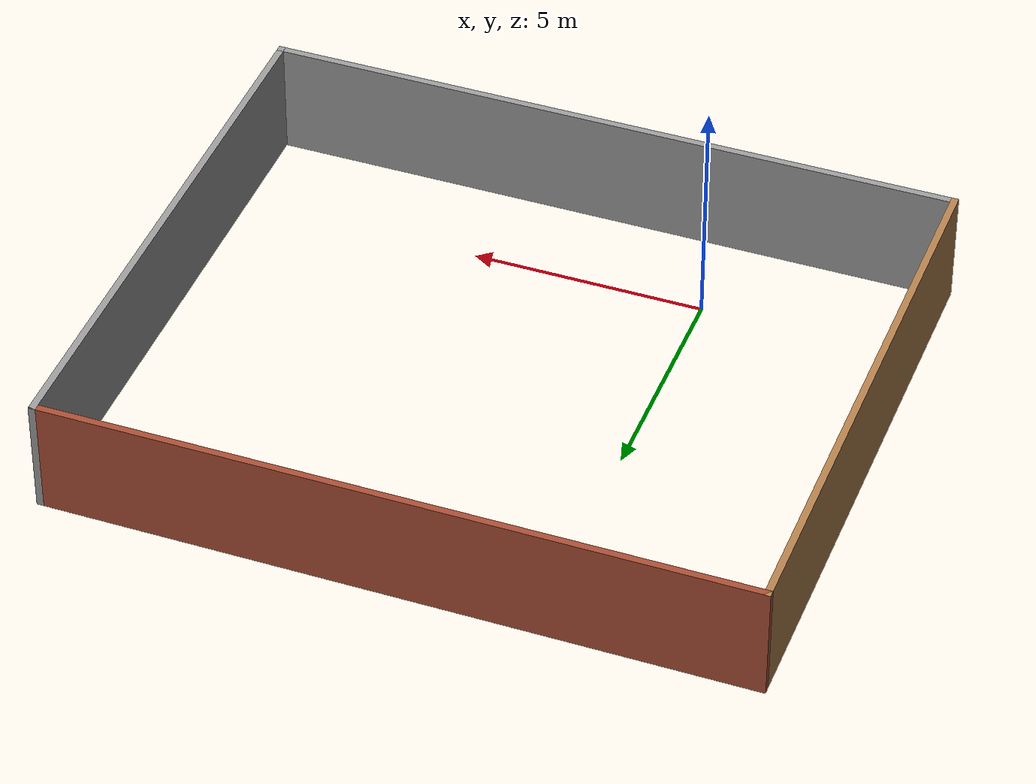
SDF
<?xml version='1.0'?>
<sdf version='1.6'>
  <model name='Untitled'>
    <pose frame=''>2.81488 3.95718 0 0 -0 0</pose>
    <link name='Wall_21'>
      <collision name='Wall_21_Collision'>
        <geometry>
          <box>
            <size>15 0.15 2.5</size>
          </box>
        </geometry>
        <pose frame=''>0 0 1.25 0 -0 0</pose>
      </collision>
      <visual name='Wall_21_Visual'>
        <pose frame=''>0 0 1.25 0 -0 0</pose>
        <geometry>
          <box>
            <size>15 0.15 2.5</size>
          </box>
        </geometry>
        <material>
          <script>
            <uri>file://media/materials/scripts/gazebo.material</uri>
            <name>Gazebo/Bricks</name>
          </script>
          <ambient>0.760784 0.662745 0.627451 1</ambient>
        </material>
        <meta>
          <layer>0</layer>
        </meta>
      </visual>
      <pose frame=''>-0 6.175 0 0 -0 3.14159</pose>
    </link>
    <link name='Wall_22'>
      <collision name='Wall_22_Collision'>
        <geometry>
          <box>
            <size>12.5 0.15 2.5</size>
          </box>
        </geometry>
        <pose frame=''>0 0 1.25 0 -0 0</pose>
      </collision>
      <visual name='Wall_22_Visual'>
        <pose frame=''>0 0 1.25 0 -0 0</pose>
        <geometry>
          <box>
            <size>12.5 0.15 2.5</size>
          </box>
        </geometry>
        <material>
          <script>
            <uri>file://media/materials/scripts/gazebo.material</uri>
            <name>Gazebo/Wood</name>
          </script>
          <ambient>1 1 1 1</ambient>
        </material>
        <meta>
          <layer>0</layer>
        </meta>
      </visual>
      <pose frame=''>-7.425 0 0 0 -0 -1.5708</pose>
    </link>
    <link name='Wall_23'>
      <collision name='Wall_23_Collision'>
        <geometry>
          <box>
            <size>15 0.15 2.5</size>
          </box>
        </geometry>
        <pose frame=''>0 0 1.25 0 -0 0</pose>
      </collision>
      <visual name='Wall_23_Visual'>
        <pose frame=''>0 0 1.25 0 -0 0</pose>
        <geometry>
          <box>
            <size>15 0.15 2.5</size>
          </box>
        </geometry>
        <material>
          <script>
            <uri>file://media/materials/scripts/gazebo.material</uri>
            <name>Gazebo/Grey</name>
          </script>
          <ambient>1 1 1 1</ambient>
        </material>
        <meta>
          <layer>0</layer>
        </meta>
      </visual>
      <pose frame=''>-0 -6.175 0 0 -0 0</pose>
    </link>
    <link name='Wall_24'>
      <collision name='Wall_24_Collision'>
        <geometry>
          <box>
            <size>12.5 0.15 2.5</size>
          </box>
        </geometry>
        <pose frame=''>0 0 1.25 0 -0 0</pose>
      </collision>
      <visual name='Wall_24_Visual'>
        <pose frame=''>0 0 1.25 0 -0 0</pose>
        <geometry>
          <box>
            <size>12.5 0.15 2.5</size>
          </box>
        </geometry>
        <material>
          <script>
            <uri>file://media/materials/scripts/gazebo.material</uri>
            <name>Gazebo/Grey</name>
          </script>
          <ambient>1 1 1 1</ambient>
        </material>
        <meta>
          <layer>0</layer>
        </meta>
      </visual>
      <pose frame=''>7.425 0 0 0 -0 1.5708</pose>
    </link>
    <static>1</static>
  </model>
</sdf>
